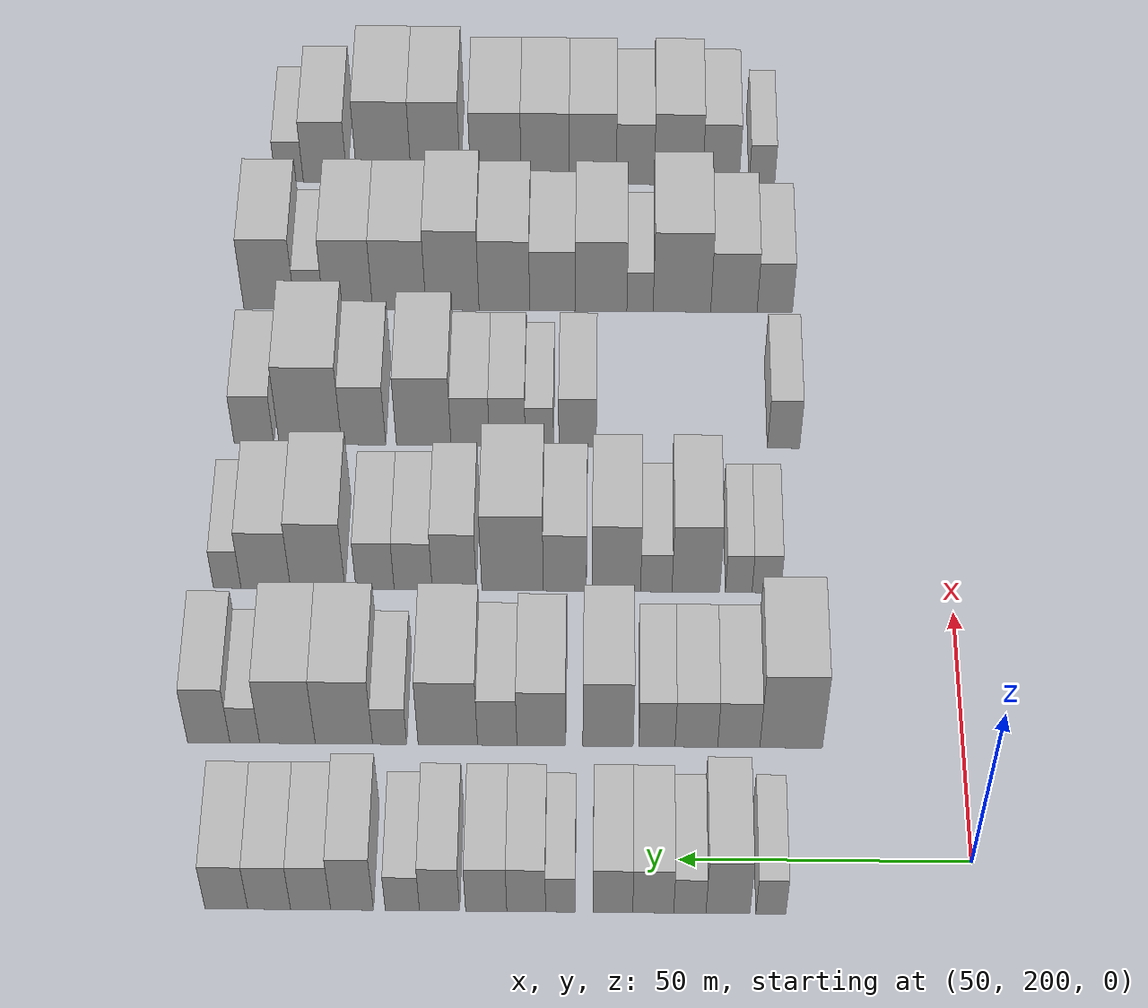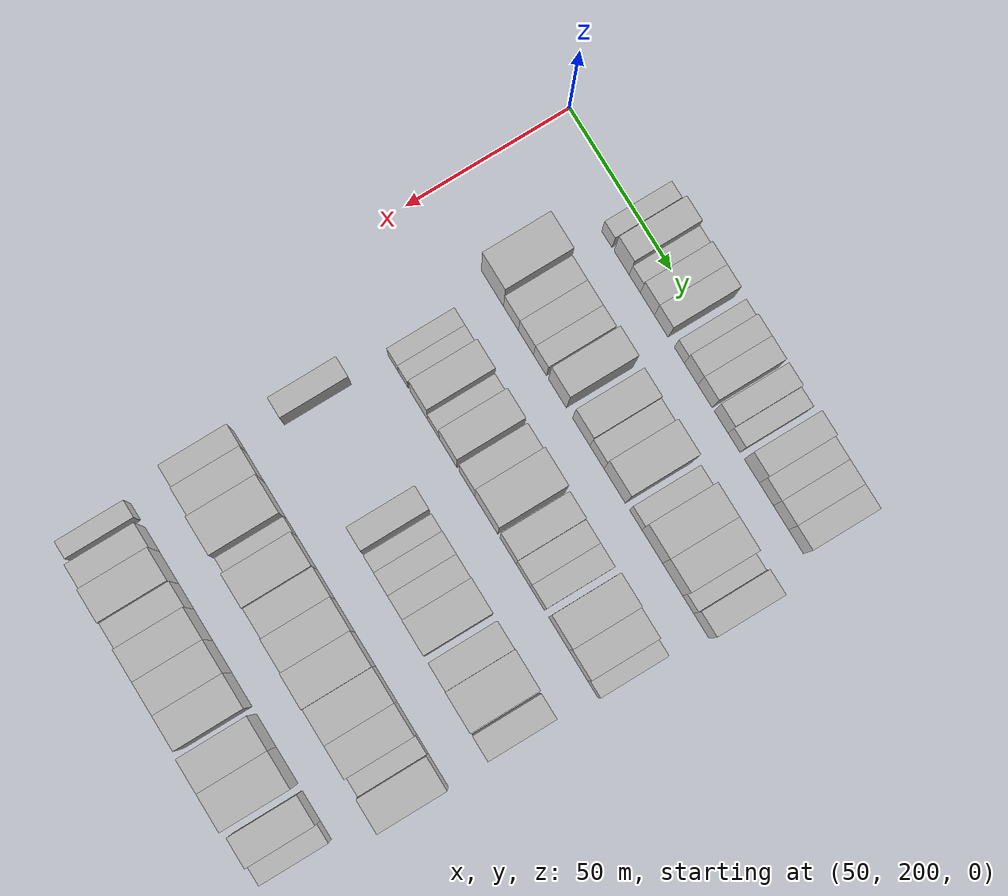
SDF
<sdf version="1.6">
 <world name="default">
  <model name="building_81">
   <static>1</static>
   <pose>50.0000 234.5594 0 0.000000 0.000000 0.000000</pose>
   <link name="link">
    <pose>0 0 6.00 0 0 0</pose>
    <collision name="collision"><geometry><box><size>20.0000 5.0505 12.0000</size></box></geometry></collision>
    <visual name="visual">
     <cast_shadows>0</cast_shadows>
     <geometry><box><size>20.0000 5.0505 12.0000</size></box></geometry>
     <material>
      <script>
       <uri>model://HANNAS_wall/materials/scripts</uri>
       <uri>model://HANNAS_wall/materials/textures</uri>
       <name>vrc/HANNAS_wall</name>
      </script>
     </material>
    </visual>
   </link>
  </model>
  <model name="building_82">
   <static>1</static>
   <pose>50.0000 241.7893 0 0.000000 0.000000 0.000000</pose>
   <link name="link">
    <pose>0 0 9.00 0 0 0</pose>
    <collision name="collision"><geometry><box><size>20.0000 7.4093 18.0000</size></box></geometry></collision>
    <visual name="visual">
     <cast_shadows>0</cast_shadows>
     <geometry><box><size>20.0000 7.4093 18.0000</size></box></geometry>
     <material>
      <script>
       <uri>model://HANNAS_wall/materials/scripts</uri>
       <uri>model://HANNAS_wall/materials/textures</uri>
       <name>vrc/HANNAS_wall</name>
      </script>
     </material>
    </visual>
   </link>
  </model>
  <model name="building_83">
   <static>1</static>
   <pose>50.0000 248.2131 0 0.000000 0.000000 0.000000</pose>
   <link name="link">
    <pose>0 0 6.00 0 0 0</pose>
    <collision name="collision"><geometry><box><size>20.0000 5.4383 12.0000</size></box></geometry></collision>
    <visual name="visual">
     <cast_shadows>0</cast_shadows>
     <geometry><box><size>20.0000 5.4383 12.0000</size></box></geometry>
     <material>
      <script>
       <uri>model://HANNAS_wall/materials/scripts</uri>
       <uri>model://HANNAS_wall/materials/textures</uri>
       <name>vrc/HANNAS_wall</name>
      </script>
     </material>
    </visual>
   </link>
  </model>
  <model name="building_84">
   <static>1</static>
   <pose>50.0000 254.3886 0 0.000000 0.000000 0.000000</pose>
   <link name="link">
    <pose>0 0 7.50 0 0 0</pose>
    <collision name="collision"><geometry><box><size>20.0000 6.9126 15.0000</size></box></geometry></collision>
    <visual name="visual">
     <cast_shadows>0</cast_shadows>
     <geometry><box><size>20.0000 6.9126 15.0000</size></box></geometry>
     <material>
      <script>
       <uri>model://HANNAS_wall/materials/scripts</uri>
       <uri>model://HANNAS_wall/materials/textures</uri>
       <name>vrc/HANNAS_wall</name>
      </script>
     </material>
    </visual>
   </link>
  </model>
  <model name="building_85">
   <static>1</static>
   <pose>50.0000 261.1928 0 0.000000 0.000000 0.000000</pose>
   <link name="link">
    <pose>0 0 7.50 0 0 0</pose>
    <collision name="collision"><geometry><box><size>20.0000 6.6959 15.0000</size></box></geometry></collision>
    <visual name="visual">
     <cast_shadows>0</cast_shadows>
     <geometry><box><size>20.0000 6.6959 15.0000</size></box></geometry>
     <material>
      <script>
       <uri>model://HANNAS_wall/materials/scripts</uri>
       <uri>model://HANNAS_wall/materials/textures</uri>
       <name>vrc/HANNAS_wall</name>
      </script>
     </material>
    </visual>
   </link>
  </model>
  <model name="building_86">
   <static>1</static>
   <pose>50.0000 270.0255 0 0.000000 0.000000 0.000000</pose>
   <link name="link">
    <pose>0 0 6.00 0 0 0</pose>
    <collision name="collision"><geometry><box><size>20.0000 4.9695 12.0000</size></box></geometry></collision>
    <visual name="visual">
     <cast_shadows>0</cast_shadows>
     <geometry><box><size>20.0000 4.9695 12.0000</size></box></geometry>
     <material>
      <script>
       <uri>model://HANNAS_wall/materials/scripts</uri>
       <uri>model://HANNAS_wall/materials/textures</uri>
       <name>vrc/HANNAS_wall</name>
      </script>
     </material>
    </visual>
   </link>
  </model>
  <model name="building_87">
   <static>1</static>
   <pose>50.0000 275.7787 0 0.000000 0.000000 0.000000</pose>
   <link name="link">
    <pose>0 0 7.50 0 0 0</pose>
    <collision name="collision"><geometry><box><size>20.0000 6.5369 15.0000</size></box></geometry></collision>
    <visual name="visual">
     <cast_shadows>0</cast_shadows>
     <geometry><box><size>20.0000 6.5369 15.0000</size></box></geometry>
     <material>
      <script>
       <uri>model://HANNAS_wall/materials/scripts</uri>
       <uri>model://HANNAS_wall/materials/textures</uri>
       <name>vrc/HANNAS_wall</name>
      </script>
     </material>
    </visual>
   </link>
  </model>
  <model name="building_88">
   <static>1</static>
   <pose>50.0000 282.5182 0 0.000000 0.000000 0.000000</pose>
   <link name="link">
    <pose>0 0 7.50 0 0 0</pose>
    <collision name="collision"><geometry><box><size>20.0000 6.9420 15.0000</size></box></geometry></collision>
    <visual name="visual">
     <cast_shadows>0</cast_shadows>
     <geometry><box><size>20.0000 6.9420 15.0000</size></box></geometry>
     <material>
      <script>
       <uri>model://HANNAS_wall/materials/scripts</uri>
       <uri>model://HANNAS_wall/materials/textures</uri>
       <name>vrc/HANNAS_wall</name>
      </script>
     </material>
    </visual>
   </link>
  </model>
  <model name="building_89">
   <static>1</static>
   <pose>50.0000 290.3749 0 0.000000 0.000000 0.000000</pose>
   <link name="link">
    <pose>0 0 7.50 0 0 0</pose>
    <collision name="collision"><geometry><box><size>20.0000 6.7715 15.0000</size></box></geometry></collision>
    <visual name="visual">
     <cast_shadows>0</cast_shadows>
     <geometry><box><size>20.0000 6.7715 15.0000</size></box></geometry>
     <material>
      <script>
       <uri>model://HANNAS_wall/materials/scripts</uri>
       <uri>model://HANNAS_wall/materials/textures</uri>
       <name>vrc/HANNAS_wall</name>
      </script>
     </material>
    </visual>
   </link>
  </model>
  <model name="building_90">
   <static>1</static>
   <pose>50.0000 296.6431 0 0.000000 0.000000 0.000000</pose>
   <link name="link">
    <pose>0 0 6.00 0 0 0</pose>
    <collision name="collision"><geometry><box><size>20.0000 5.7649 12.0000</size></box></geometry></collision>
    <visual name="visual">
     <cast_shadows>0</cast_shadows>
     <geometry><box><size>20.0000 5.7649 12.0000</size></box></geometry>
     <material>
      <script>
       <uri>model://HANNAS_wall/materials/scripts</uri>
       <uri>model://HANNAS_wall/materials/textures</uri>
       <name>vrc/HANNAS_wall</name>
      </script>
     </material>
    </visual>
   </link>
  </model>
  <model name="building_91">
   <static>1</static>
   <pose>50.0000 305.1294 0 0.000000 0.000000 0.000000</pose>
   <link name="link">
    <pose>0 0 9.00 0 0 0</pose>
    <collision name="collision"><geometry><box><size>20.0000 7.2079 18.0000</size></box></geometry></collision>
    <visual name="visual">
     <cast_shadows>0</cast_shadows>
     <geometry><box><size>20.0000 7.2079 18.0000</size></box></geometry>
     <material>
      <script>
       <uri>model://HANNAS_wall/materials/scripts</uri>
       <uri>model://HANNAS_wall/materials/textures</uri>
       <name>vrc/HANNAS_wall</name>
      </script>
     </material>
    </visual>
   </link>
  </model>
  <model name="building_92">
   <static>1</static>
   <pose>50.0000 312.1229 0 0.000000 0.000000 0.000000</pose>
   <link name="link">
    <pose>0 0 7.50 0 0 0</pose>
    <collision name="collision"><geometry><box><size>20.0000 6.7791 15.0000</size></box></geometry></collision>
    <visual name="visual">
     <cast_shadows>0</cast_shadows>
     <geometry><box><size>20.0000 6.7791 15.0000</size></box></geometry>
     <material>
      <script>
       <uri>model://HANNAS_wall/materials/scripts</uri>
       <uri>model://HANNAS_wall/materials/textures</uri>
       <name>vrc/HANNAS_wall</name>
      </script>
     </material>
    </visual>
   </link>
  </model>
  <model name="building_93">
   <static>1</static>
   <pose>50.0000 319.1293 0 0.000000 0.000000 0.000000</pose>
   <link name="link">
    <pose>0 0 7.50 0 0 0</pose>
    <collision name="collision"><geometry><box><size>20.0000 7.2337 15.0000</size></box></geometry></collision>
    <visual name="visual">
     <cast_shadows>0</cast_shadows>
     <geometry><box><size>20.0000 7.2337 15.0000</size></box></geometry>
     <material>
      <script>
       <uri>model://HANNAS_wall/materials/scripts</uri>
       <uri>model://HANNAS_wall/materials/textures</uri>
       <name>vrc/HANNAS_wall</name>
      </script>
     </material>
    </visual>
   </link>
  </model>
  <model name="building_94">
   <static>1</static>
   <pose>50.0000 326.3462 0 0.000000 0.000000 0.000000</pose>
   <link name="link">
    <pose>0 0 7.50 0 0 0</pose>
    <collision name="collision"><geometry><box><size>20.0000 7.2000 15.0000</size></box></geometry></collision>
    <visual name="visual">
     <cast_shadows>0</cast_shadows>
     <geometry><box><size>20.0000 7.2000 15.0000</size></box></geometry>
     <material>
      <script>
       <uri>model://HANNAS_wall/materials/scripts</uri>
       <uri>model://HANNAS_wall/materials/textures</uri>
       <name>vrc/HANNAS_wall</name>
      </script>
     </material>
    </visual>
   </link>
  </model>
  <model name="building_204">
   <static>1</static>
   <pose>82.0000 230.1556 0 0.000000 0.000000 0.000000</pose>
   <link name="link">
    <pose>0 0 12.00 0 0 0</pose>
    <collision name="collision"><geometry><box><size>20.0000 10.9143 24.0000</size></box></geometry></collision>
    <visual name="visual">
     <cast_shadows>0</cast_shadows>
     <geometry><box><size>20.0000 10.9143 24.0000</size></box></geometry>
     <material>
      <script>
       <uri>model://HANNAS_wall/materials/scripts</uri>
       <uri>model://HANNAS_wall/materials/textures</uri>
       <name>vrc/HANNAS_wall</name>
      </script>
     </material>
    </visual>
   </link>
  </model>
  <model name="building_205">
   <static>1</static>
   <pose>82.0000 239.2922 0 0.000000 0.000000 0.000000</pose>
   <link name="link">
    <pose>0 0 7.50 0 0 0</pose>
    <collision name="collision"><geometry><box><size>20.0000 7.3589 15.0000</size></box></geometry></collision>
    <visual name="visual">
     <cast_shadows>0</cast_shadows>
     <geometry><box><size>20.0000 7.3589 15.0000</size></box></geometry>
     <material>
      <script>
       <uri>model://HANNAS_wall/materials/scripts</uri>
       <uri>model://HANNAS_wall/materials/textures</uri>
       <name>vrc/HANNAS_wall</name>
      </script>
     </material>
    </visual>
   </link>
  </model>
  <model name="building_206">
   <static>1</static>
   <pose>82.0000 246.6973 0 0.000000 0.000000 0.000000</pose>
   <link name="link">
    <pose>0 0 7.50 0 0 0</pose>
    <collision name="collision"><geometry><box><size>20.0000 7.4515 15.0000</size></box></geometry></collision>
    <visual name="visual">
     <cast_shadows>0</cast_shadows>
     <geometry><box><size>20.0000 7.4515 15.0000</size></box></geometry>
     <material>
      <script>
       <uri>model://HANNAS_wall/materials/scripts</uri>
       <uri>model://HANNAS_wall/materials/textures</uri>
       <name>vrc/HANNAS_wall</name>
      </script>
     </material>
    </visual>
   </link>
  </model>
  <model name="building_207">
   <static>1</static>
   <pose>82.0000 253.5806 0 0.000000 0.000000 0.000000</pose>
   <link name="link">
    <pose>0 0 7.50 0 0 0</pose>
    <collision name="collision"><geometry><box><size>20.0000 6.3149 15.0000</size></box></geometry></collision>
    <visual name="visual">
     <cast_shadows>0</cast_shadows>
     <geometry><box><size>20.0000 6.3149 15.0000</size></box></geometry>
     <material>
      <script>
       <uri>model://HANNAS_wall/materials/scripts</uri>
       <uri>model://HANNAS_wall/materials/textures</uri>
       <name>vrc/HANNAS_wall</name>
      </script>
     </material>
    </visual>
   </link>
  </model>
  <model name="building_208">
   <static>1</static>
   <pose>82.0000 262.1246 0 0.000000 0.000000 0.000000</pose>
   <link name="link">
    <pose>0 0 10.50 0 0 0</pose>
    <collision name="collision"><geometry><box><size>20.0000 8.7732 21.0000</size></box></geometry></collision>
    <visual name="visual">
     <cast_shadows>0</cast_shadows>
     <geometry><box><size>20.0000 8.7732 21.0000</size></box></geometry>
     <material>
      <script>
       <uri>model://HANNAS_wall/materials/scripts</uri>
       <uri>model://HANNAS_wall/materials/textures</uri>
       <name>vrc/HANNAS_wall</name>
      </script>
     </material>
    </visual>
   </link>
  </model>
  <model name="building_209">
   <static>1</static>
   <pose>82.0000 273.7693 0 0.000000 0.000000 0.000000</pose>
   <link name="link">
    <pose>0 0 9.00 0 0 0</pose>
    <collision name="collision"><geometry><box><size>20.0000 8.5161 18.0000</size></box></geometry></collision>
    <visual name="visual">
     <cast_shadows>0</cast_shadows>
     <geometry><box><size>20.0000 8.5161 18.0000</size></box></geometry>
     <material>
      <script>
       <uri>model://HANNAS_wall/materials/scripts</uri>
       <uri>model://HANNAS_wall/materials/textures</uri>
       <name>vrc/HANNAS_wall</name>
      </script>
     </material>
    </visual>
   </link>
  </model>
  <model name="building_210">
   <static>1</static>
   <pose>82.0000 281.4695 0 0.000000 0.000000 0.000000</pose>
   <link name="link">
    <pose>0 0 7.50 0 0 0</pose>
    <collision name="collision"><geometry><box><size>20.0000 6.8843 15.0000</size></box></geometry></collision>
    <visual name="visual">
     <cast_shadows>0</cast_shadows>
     <geometry><box><size>20.0000 6.8843 15.0000</size></box></geometry>
     <material>
      <script>
       <uri>model://HANNAS_wall/materials/scripts</uri>
       <uri>model://HANNAS_wall/materials/textures</uri>
       <name>vrc/HANNAS_wall</name>
      </script>
     </material>
    </visual>
   </link>
  </model>
  <model name="building_211">
   <static>1</static>
   <pose>82.0000 290.1029 0 0.000000 0.000000 0.000000</pose>
   <link name="link">
    <pose>0 0 10.50 0 0 0</pose>
    <collision name="collision"><geometry><box><size>20.0000 10.3825 21.0000</size></box></geometry></collision>
    <visual name="visual">
     <cast_shadows>0</cast_shadows>
     <geometry><box><size>20.0000 10.3825 21.0000</size></box></geometry>
     <material>
      <script>
       <uri>model://HANNAS_wall/materials/scripts</uri>
       <uri>model://HANNAS_wall/materials/textures</uri>
       <name>vrc/HANNAS_wall</name>
      </script>
     </material>
    </visual>
   </link>
  </model>
  <model name="building_212">
   <static>1</static>
   <pose>82.0000 300.2733 0 0.000000 0.000000 0.000000</pose>
   <link name="link">
    <pose>0 0 6.00 0 0 0</pose>
    <collision name="collision"><geometry><box><size>20.0000 5.9583 12.0000</size></box></geometry></collision>
    <visual name="visual">
     <cast_shadows>0</cast_shadows>
     <geometry><box><size>20.0000 5.9583 12.0000</size></box></geometry>
     <material>
      <script>
       <uri>model://HANNAS_wall/materials/scripts</uri>
       <uri>model://HANNAS_wall/materials/textures</uri>
       <name>vrc/HANNAS_wall</name>
      </script>
     </material>
    </visual>
   </link>
  </model>
  <model name="building_213">
   <static>1</static>
   <pose>82.0000 308.2723 0 0.000000 0.000000 0.000000</pose>
   <link name="link">
    <pose>0 0 10.50 0 0 0</pose>
    <collision name="collision"><geometry><box><size>20.0000 10.0398 21.0000</size></box></geometry></collision>
    <visual name="visual">
     <cast_shadows>0</cast_shadows>
     <geometry><box><size>20.0000 10.0398 21.0000</size></box></geometry>
     <material>
      <script>
       <uri>model://HANNAS_wall/materials/scripts</uri>
       <uri>model://HANNAS_wall/materials/textures</uri>
       <name>vrc/HANNAS_wall</name>
      </script>
     </material>
    </visual>
   </link>
  </model>
  <model name="building_214">
   <static>1</static>
   <pose>82.0000 318.1455 0 0.000000 0.000000 0.000000</pose>
   <link name="link">
    <pose>0 0 10.50 0 0 0</pose>
    <collision name="collision"><geometry><box><size>20.0000 9.7064 21.0000</size></box></geometry></collision>
    <visual name="visual">
     <cast_shadows>0</cast_shadows>
     <geometry><box><size>20.0000 9.7064 21.0000</size></box></geometry>
     <material>
      <script>
       <uri>model://HANNAS_wall/materials/scripts</uri>
       <uri>model://HANNAS_wall/materials/textures</uri>
       <name>vrc/HANNAS_wall</name>
      </script>
     </material>
    </visual>
   </link>
  </model>
  <model name="building_215">
   <static>1</static>
   <pose>82.0000 325.6004 0 0.000000 0.000000 0.000000</pose>
   <link name="link">
    <pose>0 0 6.00 0 0 0</pose>
    <collision name="collision"><geometry><box><size>20.0000 5.2034 12.0000</size></box></geometry></collision>
    <visual name="visual">
     <cast_shadows>0</cast_shadows>
     <geometry><box><size>20.0000 5.2034 12.0000</size></box></geometry>
     <material>
      <script>
       <uri>model://HANNAS_wall/materials/scripts</uri>
       <uri>model://HANNAS_wall/materials/textures</uri>
       <name>vrc/HANNAS_wall</name>
      </script>
     </material>
    </visual>
   </link>
  </model>
  <model name="building_216">
   <static>1</static>
   <pose>82.0000 331.9072 0 0.000000 0.000000 0.000000</pose>
   <link name="link">
    <pose>0 0 9.00 0 0 0</pose>
    <collision name="collision"><geometry><box><size>20.0000 7.4102 18.0000</size></box></geometry></collision>
    <visual name="visual">
     <cast_shadows>0</cast_shadows>
     <geometry><box><size>20.0000 7.4102 18.0000</size></box></geometry>
     <material>
      <script>
       <uri>model://HANNAS_wall/materials/scripts</uri>
       <uri>model://HANNAS_wall/materials/textures</uri>
       <name>vrc/HANNAS_wall</name>
      </script>
     </material>
    </visual>
   </link>
  </model>
  <model name="building_328">
   <static>1</static>
   <pose>114.0000 233.6411 0 0.000000 0.000000 0.000000</pose>
   <link name="link">
    <pose>0 0 6.00 0 0 0</pose>
    <collision name="collision"><geometry><box><size>20.0000 5.1737 12.0000</size></box></geometry></collision>
    <visual name="visual">
     <cast_shadows>0</cast_shadows>
     <geometry><box><size>20.0000 5.1737 12.0000</size></box></geometry>
     <material>
      <script>
       <uri>model://HANNAS_wall/materials/scripts</uri>
       <uri>model://HANNAS_wall/materials/textures</uri>
       <name>vrc/HANNAS_wall</name>
      </script>
     </material>
    </visual>
   </link>
  </model>
  <model name="building_329">
   <static>1</static>
   <pose>114.0000 238.6378 0 0.000000 0.000000 0.000000</pose>
   <link name="link">
    <pose>0 0 6.00 0 0 0</pose>
    <collision name="collision"><geometry><box><size>20.0000 4.8197 12.0000</size></box></geometry></collision>
    <visual name="visual">
     <cast_shadows>0</cast_shadows>
     <geometry><box><size>20.0000 4.8197 12.0000</size></box></geometry>
     <material>
      <script>
       <uri>model://HANNAS_wall/materials/scripts</uri>
       <uri>model://HANNAS_wall/materials/textures</uri>
       <name>vrc/HANNAS_wall</name>
      </script>
     </material>
    </visual>
   </link>
  </model>
  <model name="building_330">
   <static>1</static>
   <pose>114.0000 246.3784 0 0.000000 0.000000 0.000000</pose>
   <link name="link">
    <pose>0 0 10.50 0 0 0</pose>
    <collision name="collision"><geometry><box><size>20.0000 8.6616 21.0000</size></box></geometry></collision>
    <visual name="visual">
     <cast_shadows>0</cast_shadows>
     <geometry><box><size>20.0000 8.6616 21.0000</size></box></geometry>
     <material>
      <script>
       <uri>model://HANNAS_wall/materials/scripts</uri>
       <uri>model://HANNAS_wall/materials/textures</uri>
       <name>vrc/HANNAS_wall</name>
      </script>
     </material>
    </visual>
   </link>
  </model>
  <model name="building_331">
   <static>1</static>
   <pose>114.0000 253.5466 0 0.000000 0.000000 0.000000</pose>
   <link name="link">
    <pose>0 0 6.00 0 0 0</pose>
    <collision name="collision"><geometry><box><size>20.0000 5.6749 12.0000</size></box></geometry></collision>
    <visual name="visual">
     <cast_shadows>0</cast_shadows>
     <geometry><box><size>20.0000 5.6749 12.0000</size></box></geometry>
     <material>
      <script>
       <uri>model://HANNAS_wall/materials/scripts</uri>
       <uri>model://HANNAS_wall/materials/textures</uri>
       <name>vrc/HANNAS_wall</name>
      </script>
     </material>
    </visual>
   </link>
  </model>
  <model name="building_332">
   <static>1</static>
   <pose>114.0000 260.7727 0 0.000000 0.000000 0.000000</pose>
   <link name="link">
    <pose>0 0 10.50 0 0 0</pose>
    <collision name="collision"><geometry><box><size>20.0000 8.7772 21.0000</size></box></geometry></collision>
    <visual name="visual">
     <cast_shadows>0</cast_shadows>
     <geometry><box><size>20.0000 8.7772 21.0000</size></box></geometry>
     <material>
      <script>
       <uri>model://HANNAS_wall/materials/scripts</uri>
       <uri>model://HANNAS_wall/materials/textures</uri>
       <name>vrc/HANNAS_wall</name>
      </script>
     </material>
    </visual>
   </link>
  </model>
  <model name="building_333">
   <static>1</static>
   <pose>114.0000 270.0495 0 0.000000 0.000000 0.000000</pose>
   <link name="link">
    <pose>0 0 9.00 0 0 0</pose>
    <collision name="collision"><geometry><box><size>20.0000 7.7764 18.0000</size></box></geometry></collision>
    <visual name="visual">
     <cast_shadows>0</cast_shadows>
     <geometry><box><size>20.0000 7.7764 18.0000</size></box></geometry>
     <material>
      <script>
       <uri>model://HANNAS_wall/materials/scripts</uri>
       <uri>model://HANNAS_wall/materials/textures</uri>
       <name>vrc/HANNAS_wall</name>
      </script>
     </material>
    </visual>
   </link>
  </model>
  <model name="building_334">
   <static>1</static>
   <pose>114.0000 279.5026 0 0.000000 0.000000 0.000000</pose>
   <link name="link">
    <pose>0 0 12.00 0 0 0</pose>
    <collision name="collision"><geometry><box><size>20.0000 11.1298 24.0000</size></box></geometry></collision>
    <visual name="visual">
     <cast_shadows>0</cast_shadows>
     <geometry><box><size>20.0000 11.1298 24.0000</size></box></geometry>
     <material>
      <script>
       <uri>model://HANNAS_wall/materials/scripts</uri>
       <uri>model://HANNAS_wall/materials/textures</uri>
       <name>vrc/HANNAS_wall</name>
      </script>
     </material>
    </visual>
   </link>
  </model>
  <model name="building_335">
   <static>1</static>
   <pose>114.0000 290.0503 0 0.000000 0.000000 0.000000</pose>
   <link name="link">
    <pose>0 0 9.00 0 0 0</pose>
    <collision name="collision"><geometry><box><size>20.0000 7.9657 18.0000</size></box></geometry></collision>
    <visual name="visual">
     <cast_shadows>0</cast_shadows>
     <geometry><box><size>20.0000 7.9657 18.0000</size></box></geometry>
     <material>
      <script>
       <uri>model://HANNAS_wall/materials/scripts</uri>
       <uri>model://HANNAS_wall/materials/textures</uri>
       <name>vrc/HANNAS_wall</name>
      </script>
     </material>
    </visual>
   </link>
  </model>
  <model name="building_336">
   <static>1</static>
   <pose>114.0000 297.4807 0 0.000000 0.000000 0.000000</pose>
   <link name="link">
    <pose>0 0 7.50 0 0 0</pose>
    <collision name="collision"><geometry><box><size>20.0000 6.8951 15.0000</size></box></geometry></collision>
    <visual name="visual">
     <cast_shadows>0</cast_shadows>
     <geometry><box><size>20.0000 6.8951 15.0000</size></box></geometry>
     <material>
      <script>
       <uri>model://HANNAS_wall/materials/scripts</uri>
       <uri>model://HANNAS_wall/materials/textures</uri>
       <name>vrc/HANNAS_wall</name>
      </script>
     </material>
    </visual>
   </link>
  </model>
  <model name="building_337">
   <static>1</static>
   <pose>114.0000 304.3739 0 0.000000 0.000000 0.000000</pose>
   <link name="link">
    <pose>0 0 7.50 0 0 0</pose>
    <collision name="collision"><geometry><box><size>20.0000 6.8912 15.0000</size></box></geometry></collision>
    <visual name="visual">
     <cast_shadows>0</cast_shadows>
     <geometry><box><size>20.0000 6.8912 15.0000</size></box></geometry>
     <material>
      <script>
       <uri>model://HANNAS_wall/materials/scripts</uri>
       <uri>model://HANNAS_wall/materials/textures</uri>
       <name>vrc/HANNAS_wall</name>
      </script>
     </material>
    </visual>
   </link>
  </model>
  <model name="building_338">
   <static>1</static>
   <pose>114.0000 314.7518 0 0.000000 0.000000 0.000000</pose>
   <link name="link">
    <pose>0 0 10.50 0 0 0</pose>
    <collision name="collision"><geometry><box><size>20.0000 9.8646 21.0000</size></box></geometry></collision>
    <visual name="visual">
     <cast_shadows>0</cast_shadows>
     <geometry><box><size>20.0000 9.8646 21.0000</size></box></geometry>
     <material>
      <script>
       <uri>model://HANNAS_wall/materials/scripts</uri>
       <uri>model://HANNAS_wall/materials/textures</uri>
       <name>vrc/HANNAS_wall</name>
      </script>
     </material>
    </visual>
   </link>
  </model>
  <model name="building_339">
   <static>1</static>
   <pose>114.0000 324.1696 0 0.000000 0.000000 0.000000</pose>
   <link name="link">
    <pose>0 0 9.00 0 0 0</pose>
    <collision name="collision"><geometry><box><size>20.0000 8.9711 18.0000</size></box></geometry></collision>
    <visual name="visual">
     <cast_shadows>0</cast_shadows>
     <geometry><box><size>20.0000 8.9711 18.0000</size></box></geometry>
     <material>
      <script>
       <uri>model://HANNAS_wall/materials/scripts</uri>
       <uri>model://HANNAS_wall/materials/textures</uri>
       <name>vrc/HANNAS_wall</name>
      </script>
     </material>
    </visual>
   </link>
  </model>
  <model name="building_340">
   <static>1</static>
   <pose>114.0000 331.1522 0 0.000000 0.000000 0.000000</pose>
   <link name="link">
    <pose>0 0 6.00 0 0 0</pose>
    <collision name="collision"><geometry><box><size>20.0000 4.9940 12.0000</size></box></geometry></collision>
    <visual name="visual">
     <cast_shadows>0</cast_shadows>
     <geometry><box><size>20.0000 4.9940 12.0000</size></box></geometry>
     <material>
      <script>
       <uri>model://HANNAS_wall/materials/scripts</uri>
       <uri>model://HANNAS_wall/materials/textures</uri>
       <name>vrc/HANNAS_wall</name>
      </script>
     </material>
    </visual>
   </link>
  </model>
  <model name="building_448">
   <static>1</static>
   <pose>146.0000 229.5962 0 0.000000 0.000000 0.000000</pose>
   <link name="link">
    <pose>0 0 7.50 0 0 0</pose>
    <collision name="collision"><geometry><box><size>20.0000 6.0228 15.0000</size></box></geometry></collision>
    <visual name="visual">
     <cast_shadows>0</cast_shadows>
     <geometry><box><size>20.0000 6.0228 15.0000</size></box></geometry>
     <material>
      <script>
       <uri>model://HANNAS_wall/materials/scripts</uri>
       <uri>model://HANNAS_wall/materials/textures</uri>
       <name>vrc/HANNAS_wall</name>
      </script>
     </material>
    </visual>
   </link>
  </model>
  <model name="building_449">
   <static>1</static>
   <pose>146.0000 268.0793 0 0.000000 0.000000 0.000000</pose>
   <link name="link">
    <pose>0 0 7.50 0 0 0</pose>
    <collision name="collision"><geometry><box><size>20.0000 6.9811 15.0000</size></box></geometry></collision>
    <visual name="visual">
     <cast_shadows>0</cast_shadows>
     <geometry><box><size>20.0000 6.9811 15.0000</size></box></geometry>
     <material>
      <script>
       <uri>model://HANNAS_wall/materials/scripts</uri>
       <uri>model://HANNAS_wall/materials/textures</uri>
       <name>vrc/HANNAS_wall</name>
      </script>
     </material>
    </visual>
   </link>
  </model>
  <model name="building_450">
   <static>1</static>
   <pose>146.0000 275.2077 0 0.000000 0.000000 0.000000</pose>
   <link name="link">
    <pose>0 0 6.00 0 0 0</pose>
    <collision name="collision"><geometry><box><size>20.0000 5.2757 12.0000</size></box></geometry></collision>
    <visual name="visual">
     <cast_shadows>0</cast_shadows>
     <geometry><box><size>20.0000 5.2757 12.0000</size></box></geometry>
     <material>
      <script>
       <uri>model://HANNAS_wall/materials/scripts</uri>
       <uri>model://HANNAS_wall/materials/textures</uri>
       <name>vrc/HANNAS_wall</name>
      </script>
     </material>
    </visual>
   </link>
  </model>
  <model name="building_451">
   <static>1</static>
   <pose>146.0000 281.1973 0 0.000000 0.000000 0.000000</pose>
   <link name="link">
    <pose>0 0 7.50 0 0 0</pose>
    <collision name="collision"><geometry><box><size>20.0000 6.7036 15.0000</size></box></geometry></collision>
    <visual name="visual">
     <cast_shadows>0</cast_shadows>
     <geometry><box><size>20.0000 6.7036 15.0000</size></box></geometry>
     <material>
      <script>
       <uri>model://HANNAS_wall/materials/scripts</uri>
       <uri>model://HANNAS_wall/materials/textures</uri>
       <name>vrc/HANNAS_wall</name>
      </script>
     </material>
    </visual>
   </link>
  </model>
  <model name="building_452">
   <static>1</static>
   <pose>146.0000 288.1399 0 0.000000 0.000000 0.000000</pose>
   <link name="link">
    <pose>0 0 7.50 0 0 0</pose>
    <collision name="collision"><geometry><box><size>20.0000 7.1816 15.0000</size></box></geometry></collision>
    <visual name="visual">
     <cast_shadows>0</cast_shadows>
     <geometry><box><size>20.0000 7.1816 15.0000</size></box></geometry>
     <material>
      <script>
       <uri>model://HANNAS_wall/materials/scripts</uri>
       <uri>model://HANNAS_wall/materials/textures</uri>
       <name>vrc/HANNAS_wall</name>
      </script>
     </material>
    </visual>
   </link>
  </model>
  <model name="building_453">
   <static>1</static>
   <pose>146.0000 296.8395 0 0.000000 0.000000 0.000000</pose>
   <link name="link">
    <pose>0 0 10.50 0 0 0</pose>
    <collision name="collision"><geometry><box><size>20.0000 10.2176 21.0000</size></box></geometry></collision>
    <visual name="visual">
     <cast_shadows>0</cast_shadows>
     <geometry><box><size>20.0000 10.2176 21.0000</size></box></geometry>
     <material>
      <script>
       <uri>model://HANNAS_wall/materials/scripts</uri>
       <uri>model://HANNAS_wall/materials/textures</uri>
       <name>vrc/HANNAS_wall</name>
      </script>
     </material>
    </visual>
   </link>
  </model>
  <model name="building_454">
   <static>1</static>
   <pose>146.0000 308.0796 0 0.000000 0.000000 0.000000</pose>
   <link name="link">
    <pose>0 0 9.00 0 0 0</pose>
    <collision name="collision"><geometry><box><size>20.0000 8.2625 18.0000</size></box></geometry></collision>
    <visual name="visual">
     <cast_shadows>0</cast_shadows>
     <geometry><box><size>20.0000 8.2625 18.0000</size></box></geometry>
     <material>
      <script>
       <uri>model://HANNAS_wall/materials/scripts</uri>
       <uri>model://HANNAS_wall/materials/textures</uri>
       <name>vrc/HANNAS_wall</name>
      </script>
     </material>
    </visual>
   </link>
  </model>
  <model name="building_455">
   <static>1</static>
   <pose>146.0000 318.0580 0 0.000000 0.000000 0.000000</pose>
   <link name="link">
    <pose>0 0 12.00 0 0 0</pose>
    <collision name="collision"><geometry><box><size>20.0000 11.6944 24.0000</size></box></geometry></collision>
    <visual name="visual">
     <cast_shadows>0</cast_shadows>
     <geometry><box><size>20.0000 11.6944 24.0000</size></box></geometry>
     <material>
      <script>
       <uri>model://HANNAS_wall/materials/scripts</uri>
       <uri>model://HANNAS_wall/materials/textures</uri>
       <name>vrc/HANNAS_wall</name>
      </script>
     </material>
    </visual>
   </link>
  </model>
  <model name="building_456">
   <static>1</static>
   <pose>146.0000 328.6145 0 0.000000 0.000000 0.000000</pose>
   <link name="link">
    <pose>0 0 7.50 0 0 0</pose>
    <collision name="collision"><geometry><box><size>20.0000 7.4185 15.0000</size></box></geometry></collision>
    <visual name="visual">
     <cast_shadows>0</cast_shadows>
     <geometry><box><size>20.0000 7.4185 15.0000</size></box></geometry>
     <material>
      <script>
       <uri>model://HANNAS_wall/materials/scripts</uri>
       <uri>model://HANNAS_wall/materials/textures</uri>
       <name>vrc/HANNAS_wall</name>
      </script>
     </material>
    </visual>
   </link>
  </model>
  <model name="building_565">
   <static>1</static>
   <pose>178.0000 230.3397 0 0.000000 0.000000 0.000000</pose>
   <link name="link">
    <pose>0 0 7.50 0 0 0</pose>
    <collision name="collision"><geometry><box><size>20.0000 6.8147 15.0000</size></box></geometry></collision>
    <visual name="visual">
     <cast_shadows>0</cast_shadows>
     <geometry><box><size>20.0000 6.8147 15.0000</size></box></geometry>
     <material>
      <script>
       <uri>model://HANNAS_wall/materials/scripts</uri>
       <uri>model://HANNAS_wall/materials/textures</uri>
       <name>vrc/HANNAS_wall</name>
      </script>
     </material>
    </visual>
   </link>
  </model>
  <model name="building_566">
   <static>1</static>
   <pose>178.0000 238.2199 0 0.000000 0.000000 0.000000</pose>
   <link name="link">
    <pose>0 0 9.00 0 0 0</pose>
    <collision name="collision"><geometry><box><size>20.0000 8.9458 18.0000</size></box></geometry></collision>
    <visual name="visual">
     <cast_shadows>0</cast_shadows>
     <geometry><box><size>20.0000 8.9458 18.0000</size></box></geometry>
     <material>
      <script>
       <uri>model://HANNAS_wall/materials/scripts</uri>
       <uri>model://HANNAS_wall/materials/textures</uri>
       <name>vrc/HANNAS_wall</name>
      </script>
     </material>
    </visual>
   </link>
  </model>
  <model name="building_567">
   <static>1</static>
   <pose>178.0000 248.2583 0 0.000000 0.000000 0.000000</pose>
   <link name="link">
    <pose>0 0 12.00 0 0 0</pose>
    <collision name="collision"><geometry><box><size>20.0000 11.1309 24.0000</size></box></geometry></collision>
    <visual name="visual">
     <cast_shadows>0</cast_shadows>
     <geometry><box><size>20.0000 11.1309 24.0000</size></box></geometry>
     <material>
      <script>
       <uri>model://HANNAS_wall/materials/scripts</uri>
       <uri>model://HANNAS_wall/materials/textures</uri>
       <name>vrc/HANNAS_wall</name>
      </script>
     </material>
    </visual>
   </link>
  </model>
  <model name="building_568">
   <static>1</static>
   <pose>178.0000 256.3503 0 0.000000 0.000000 0.000000</pose>
   <link name="link">
    <pose>0 0 6.00 0 0 0</pose>
    <collision name="collision"><geometry><box><size>20.0000 5.0530 12.0000</size></box></geometry></collision>
    <visual name="visual">
     <cast_shadows>0</cast_shadows>
     <geometry><box><size>20.0000 5.0530 12.0000</size></box></geometry>
     <material>
      <script>
       <uri>model://HANNAS_wall/materials/scripts</uri>
       <uri>model://HANNAS_wall/materials/textures</uri>
       <name>vrc/HANNAS_wall</name>
      </script>
     </material>
    </visual>
   </link>
  </model>
  <model name="building_569">
   <static>1</static>
   <pose>178.0000 263.8429 0 0.000000 0.000000 0.000000</pose>
   <link name="link">
    <pose>0 0 10.50 0 0 0</pose>
    <collision name="collision"><geometry><box><size>20.0000 9.9322 21.0000</size></box></geometry></collision>
    <visual name="visual">
     <cast_shadows>0</cast_shadows>
     <geometry><box><size>20.0000 9.9322 21.0000</size></box></geometry>
     <material>
      <script>
       <uri>model://HANNAS_wall/materials/scripts</uri>
       <uri>model://HANNAS_wall/materials/textures</uri>
       <name>vrc/HANNAS_wall</name>
      </script>
     </material>
    </visual>
   </link>
  </model>
  <model name="building_570">
   <static>1</static>
   <pose>178.0000 273.2088 0 0.000000 0.000000 0.000000</pose>
   <link name="link">
    <pose>0 0 9.00 0 0 0</pose>
    <collision name="collision"><geometry><box><size>20.0000 8.7995 18.0000</size></box></geometry></collision>
    <visual name="visual">
     <cast_shadows>0</cast_shadows>
     <geometry><box><size>20.0000 8.7995 18.0000</size></box></geometry>
     <material>
      <script>
       <uri>model://HANNAS_wall/materials/scripts</uri>
       <uri>model://HANNAS_wall/materials/textures</uri>
       <name>vrc/HANNAS_wall</name>
      </script>
     </material>
    </visual>
   </link>
  </model>
  <model name="building_571">
   <static>1</static>
   <pose>178.0000 282.5104 0 0.000000 0.000000 0.000000</pose>
   <link name="link">
    <pose>0 0 10.50 0 0 0</pose>
    <collision name="collision"><geometry><box><size>20.0000 9.8038 21.0000</size></box></geometry></collision>
    <visual name="visual">
     <cast_shadows>0</cast_shadows>
     <geometry><box><size>20.0000 9.8038 21.0000</size></box></geometry>
     <material>
      <script>
       <uri>model://HANNAS_wall/materials/scripts</uri>
       <uri>model://HANNAS_wall/materials/textures</uri>
       <name>vrc/HANNAS_wall</name>
      </script>
     </material>
    </visual>
   </link>
  </model>
  <model name="building_572">
   <static>1</static>
   <pose>178.0000 292.5464 0 0.000000 0.000000 0.000000</pose>
   <link name="link">
    <pose>0 0 12.00 0 0 0</pose>
    <collision name="collision"><geometry><box><size>20.0000 10.2681 24.0000</size></box></geometry></collision>
    <visual name="visual">
     <cast_shadows>0</cast_shadows>
     <geometry><box><size>20.0000 10.2681 24.0000</size></box></geometry>
     <material>
      <script>
       <uri>model://HANNAS_wall/materials/scripts</uri>
       <uri>model://HANNAS_wall/materials/textures</uri>
       <name>vrc/HANNAS_wall</name>
      </script>
     </material>
    </visual>
   </link>
  </model>
  <model name="building_573">
   <static>1</static>
   <pose>178.0000 302.8358 0 0.000000 0.000000 0.000000</pose>
   <link name="link">
    <pose>0 0 10.50 0 0 0</pose>
    <collision name="collision"><geometry><box><size>20.0000 10.3108 21.0000</size></box></geometry></collision>
    <visual name="visual">
     <cast_shadows>0</cast_shadows>
     <geometry><box><size>20.0000 10.3108 21.0000</size></box></geometry>
     <material>
      <script>
       <uri>model://HANNAS_wall/materials/scripts</uri>
       <uri>model://HANNAS_wall/materials/textures</uri>
       <name>vrc/HANNAS_wall</name>
      </script>
     </material>
    </visual>
   </link>
  </model>
  <model name="building_574">
   <static>1</static>
   <pose>178.0000 312.7401 0 0.000000 0.000000 0.000000</pose>
   <link name="link">
    <pose>0 0 10.50 0 0 0</pose>
    <collision name="collision"><geometry><box><size>20.0000 9.4977 21.0000</size></box></geometry></collision>
    <visual name="visual">
     <cast_shadows>0</cast_shadows>
     <geometry><box><size>20.0000 9.4977 21.0000</size></box></geometry>
     <material>
      <script>
       <uri>model://HANNAS_wall/materials/scripts</uri>
       <uri>model://HANNAS_wall/materials/textures</uri>
       <name>vrc/HANNAS_wall</name>
      </script>
     </material>
    </visual>
   </link>
  </model>
  <model name="building_575">
   <static>1</static>
   <pose>178.0000 320.2524 0 0.000000 0.000000 0.000000</pose>
   <link name="link">
    <pose>0 0 6.00 0 0 0</pose>
    <collision name="collision"><geometry><box><size>20.0000 5.5270 12.0000</size></box></geometry></collision>
    <visual name="visual">
     <cast_shadows>0</cast_shadows>
     <geometry><box><size>20.0000 5.5270 12.0000</size></box></geometry>
     <material>
      <script>
       <uri>model://HANNAS_wall/materials/scripts</uri>
       <uri>model://HANNAS_wall/materials/textures</uri>
       <name>vrc/HANNAS_wall</name>
      </script>
     </material>
    </visual>
   </link>
  </model>
  <model name="building_576">
   <static>1</static>
   <pose>178.0000 327.9571 0 0.000000 0.000000 0.000000</pose>
   <link name="link">
    <pose>0 0 10.50 0 0 0</pose>
    <collision name="collision"><geometry><box><size>20.0000 9.8824 21.0000</size></box></geometry></collision>
    <visual name="visual">
     <cast_shadows>0</cast_shadows>
     <geometry><box><size>20.0000 9.8824 21.0000</size></box></geometry>
     <material>
      <script>
       <uri>model://HANNAS_wall/materials/scripts</uri>
       <uri>model://HANNAS_wall/materials/textures</uri>
       <name>vrc/HANNAS_wall</name>
      </script>
     </material>
    </visual>
   </link>
  </model>
  <model name="building_688">
   <static>1</static>
   <pose>210.0000 232.0119 0 0.000000 0.000000 0.000000</pose>
   <link name="link">
    <pose>0 0 6.00 0 0 0</pose>
    <collision name="collision"><geometry><box><size>20.0000 5.1014 12.0000</size></box></geometry></collision>
    <visual name="visual">
     <cast_shadows>0</cast_shadows>
     <geometry><box><size>20.0000 5.1014 12.0000</size></box></geometry>
     <material>
      <script>
       <uri>model://HANNAS_wall/materials/scripts</uri>
       <uri>model://HANNAS_wall/materials/textures</uri>
       <name>vrc/HANNAS_wall</name>
      </script>
     </material>
    </visual>
   </link>
  </model>
  <model name="building_689">
   <static>1</static>
   <pose>210.0000 240.2052 0 0.000000 0.000000 0.000000</pose>
   <link name="link">
    <pose>0 0 9.00 0 0 0</pose>
    <collision name="collision"><geometry><box><size>20.0000 7.2852 18.0000</size></box></geometry></collision>
    <visual name="visual">
     <cast_shadows>0</cast_shadows>
     <geometry><box><size>20.0000 7.2852 18.0000</size></box></geometry>
     <material>
      <script>
       <uri>model://HANNAS_wall/materials/scripts</uri>
       <uri>model://HANNAS_wall/materials/textures</uri>
       <name>vrc/HANNAS_wall</name>
      </script>
     </material>
    </visual>
   </link>
  </model>
  <model name="building_690">
   <static>1</static>
   <pose>210.0000 248.6706 0 0.000000 0.000000 0.000000</pose>
   <link name="link">
    <pose>0 0 10.50 0 0 0</pose>
    <collision name="collision"><geometry><box><size>20.0000 9.6455 21.0000</size></box></geometry></collision>
    <visual name="visual">
     <cast_shadows>0</cast_shadows>
     <geometry><box><size>20.0000 9.6455 21.0000</size></box></geometry>
     <material>
      <script>
       <uri>model://HANNAS_wall/materials/scripts</uri>
       <uri>model://HANNAS_wall/materials/textures</uri>
       <name>vrc/HANNAS_wall</name>
      </script>
     </material>
    </visual>
   </link>
  </model>
  <model name="building_691">
   <static>1</static>
   <pose>210.0000 257.2601 0 0.000000 0.000000 0.000000</pose>
   <link name="link">
    <pose>0 0 9.00 0 0 0</pose>
    <collision name="collision"><geometry><box><size>20.0000 7.5336 18.0000</size></box></geometry></collision>
    <visual name="visual">
     <cast_shadows>0</cast_shadows>
     <geometry><box><size>20.0000 7.5336 18.0000</size></box></geometry>
     <material>
      <script>
       <uri>model://HANNAS_wall/materials/scripts</uri>
       <uri>model://HANNAS_wall/materials/textures</uri>
       <name>vrc/HANNAS_wall</name>
      </script>
     </material>
    </visual>
   </link>
  </model>
  <model name="building_692">
   <static>1</static>
   <pose>210.0000 265.6829 0 0.000000 0.000000 0.000000</pose>
   <link name="link">
    <pose>0 0 10.50 0 0 0</pose>
    <collision name="collision"><geometry><box><size>20.0000 9.3120 21.0000</size></box></geometry></collision>
    <visual name="visual">
     <cast_shadows>0</cast_shadows>
     <geometry><box><size>20.0000 9.3120 21.0000</size></box></geometry>
     <material>
      <script>
       <uri>model://HANNAS_wall/materials/scripts</uri>
       <uri>model://HANNAS_wall/materials/textures</uri>
       <name>vrc/HANNAS_wall</name>
      </script>
     </material>
    </visual>
   </link>
  </model>
  <model name="building_693">
   <static>1</static>
   <pose>210.0000 275.1219 0 0.000000 0.000000 0.000000</pose>
   <link name="link">
    <pose>0 0 10.50 0 0 0</pose>
    <collision name="collision"><geometry><box><size>20.0000 9.5660 21.0000</size></box></geometry></collision>
    <visual name="visual">
     <cast_shadows>0</cast_shadows>
     <geometry><box><size>20.0000 9.5660 21.0000</size></box></geometry>
     <material>
      <script>
       <uri>model://HANNAS_wall/materials/scripts</uri>
       <uri>model://HANNAS_wall/materials/textures</uri>
       <name>vrc/HANNAS_wall</name>
      </script>
     </material>
    </visual>
   </link>
  </model>
  <model name="building_694">
   <static>1</static>
   <pose>210.0000 284.9573 0 0.000000 0.000000 0.000000</pose>
   <link name="link">
    <pose>0 0 10.50 0 0 0</pose>
    <collision name="collision"><geometry><box><size>20.0000 10.1047 21.0000</size></box></geometry></collision>
    <visual name="visual">
     <cast_shadows>0</cast_shadows>
     <geometry><box><size>20.0000 10.1047 21.0000</size></box></geometry>
     <material>
      <script>
       <uri>model://HANNAS_wall/materials/scripts</uri>
       <uri>model://HANNAS_wall/materials/textures</uri>
       <name>vrc/HANNAS_wall</name>
      </script>
     </material>
    </visual>
   </link>
  </model>
  <model name="building_695">
   <static>1</static>
   <pose>210.0000 296.9108 0 0.000000 0.000000 0.000000</pose>
   <link name="link">
    <pose>0 0 12.00 0 0 0</pose>
    <collision name="collision"><geometry><box><size>20.0000 9.8023 24.0000</size></box></geometry></collision>
    <visual name="visual">
     <cast_shadows>0</cast_shadows>
     <geometry><box><size>20.0000 9.8023 24.0000</size></box></geometry>
     <material>
      <script>
       <uri>model://HANNAS_wall/materials/scripts</uri>
       <uri>model://HANNAS_wall/materials/textures</uri>
       <name>vrc/HANNAS_wall</name>
      </script>
     </material>
    </visual>
   </link>
  </model>
  <model name="building_696">
   <static>1</static>
   <pose>210.0000 307.2239 0 0.000000 0.000000 0.000000</pose>
   <link name="link">
    <pose>0 0 12.00 0 0 0</pose>
    <collision name="collision"><geometry><box><size>20.0000 10.8238 24.0000</size></box></geometry></collision>
    <visual name="visual">
     <cast_shadows>0</cast_shadows>
     <geometry><box><size>20.0000 10.8238 24.0000</size></box></geometry>
     <material>
      <script>
       <uri>model://HANNAS_wall/materials/scripts</uri>
       <uri>model://HANNAS_wall/materials/textures</uri>
       <name>vrc/HANNAS_wall</name>
      </script>
     </material>
    </visual>
   </link>
  </model>
  <model name="building_697">
   <static>1</static>
   <pose>210.0000 319.0162 0 0.000000 0.000000 0.000000</pose>
   <link name="link">
    <pose>0 0 9.00 0 0 0</pose>
    <collision name="collision"><geometry><box><size>20.0000 8.7609 18.0000</size></box></geometry></collision>
    <visual name="visual">
     <cast_shadows>0</cast_shadows>
     <geometry><box><size>20.0000 8.7609 18.0000</size></box></geometry>
     <material>
      <script>
       <uri>model://HANNAS_wall/materials/scripts</uri>
       <uri>model://HANNAS_wall/materials/textures</uri>
       <name>vrc/HANNAS_wall</name>
      </script>
     </material>
    </visual>
   </link>
  </model>
  <model name="building_698">
   <static>1</static>
   <pose>210.0000 326.1710 0 0.000000 0.000000 0.000000</pose>
   <link name="link">
    <pose>0 0 6.00 0 0 0</pose>
    <collision name="collision"><geometry><box><size>20.0000 5.5487 12.0000</size></box></geometry></collision>
    <visual name="visual">
     <cast_shadows>0</cast_shadows>
     <geometry><box><size>20.0000 5.5487 12.0000</size></box></geometry>
     <material>
      <script>
       <uri>model://HANNAS_wall/materials/scripts</uri>
       <uri>model://HANNAS_wall/materials/textures</uri>
       <name>vrc/HANNAS_wall</name>
      </script>
     </material>
    </visual>
   </link>
  </model>
 </world>
</sdf>
